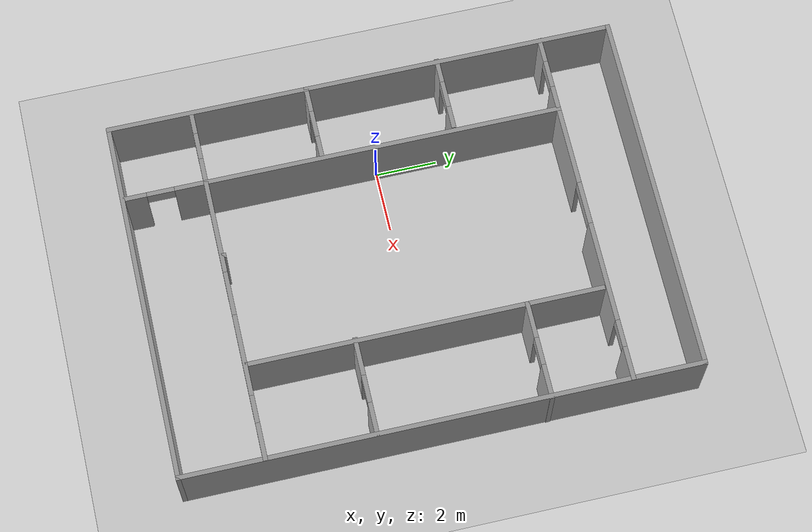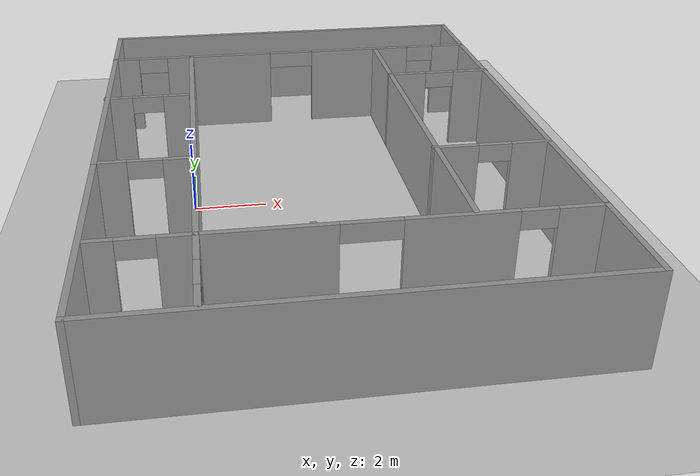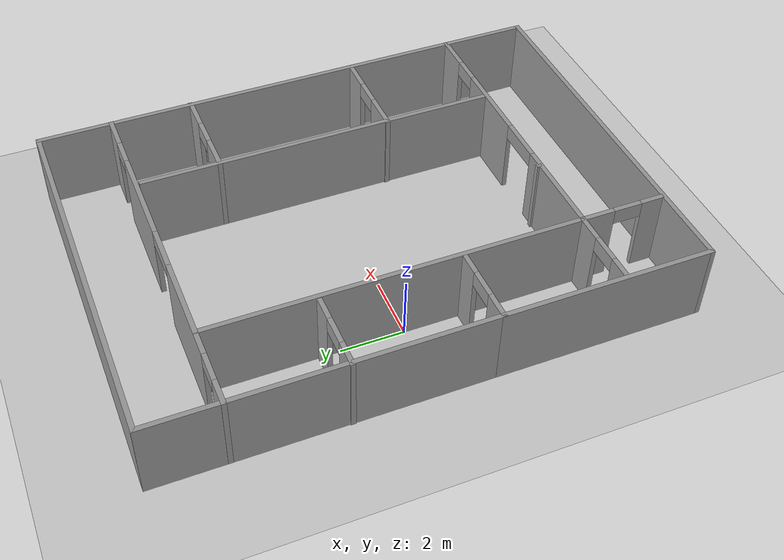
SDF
<sdf version="1.7">
 <world name="default">
  <light name="sun" type="directional">
   <pose>0 0 10 0 -0 0</pose>
   <diffuse>0.8 0.8 0.8 1</diffuse>
   <specular>0.2 0.2 0.2 1</specular>
   <attenuation>
    <range>1000</range>
    <constant>0.9</constant>
    <linear>0.01</linear>
    <quadratic>0.001</quadratic>
   </attenuation>
   <direction>-0.5 0.1 -0.9</direction>
   <spot><inner_angle>0</inner_angle><outer_angle>0</outer_angle><falloff>0</falloff></spot>
  </light>
  <model name="ground_plane">
   <static>1</static>
   <link name="link">
    <collision name="collision">
     <geometry><plane><normal>0 0 1</normal><size>100 100</size></plane></geometry>
     <surface>
      <contact><collide_bitmask>65535</collide_bitmask></contact>
      <friction><ode><mu>100</mu><mu2>50</mu2></ode></friction>
     </surface>
    </collision>
    <visual name="visual">
     <cast_shadows>0</cast_shadows>
     <geometry><plane><normal>0 0 1</normal><size>100 100</size></plane></geometry>
     <material>
      <script><uri>file://media/materials/scripts/gazebo.material</uri><name>Gazebo/Grey</name></script>
     </material>
    </visual>
   </link>
  </model>
  <gravity>0 0 -9.8</gravity>
  <magnetic_field>6e-06 2.3e-05 -4.2e-05</magnetic_field>
  <atmosphere type="adiabatic"/>
  <physics type="ode">
   <max_step_size>0.001</max_step_size>
   <real_time_factor>1</real_time_factor>
   <real_time_update_rate>1000</real_time_update_rate>
  </physics>
  <scene><ambient>0.4 0.4 0.4 1</ambient><background>0.7 0.7 0.7 1</background><shadows>1</shadows></scene>
  <spherical_coordinates>
   <surface_model>EARTH_WGS84</surface_model>
   <latitude_deg>0</latitude_deg>
   <longitude_deg>0</longitude_deg>
   <elevation>0</elevation>
   <heading_deg>0</heading_deg>
  </spherical_coordinates>
  <model name="doors">
   <pose>3.50338 0.028186 0 0 -0 0</pose>
   <link name="Wall_0">
    <collision name="Wall_0_Collision">
     <geometry><box><size>10.25 0.15 2.5</size></box></geometry>
     <pose>0 0 1.25 0 -0 0</pose>
    </collision>
    <visual name="Wall_0_Visual">
     <pose>0 0 1.25 0 -0 0</pose>
     <geometry><box><size>10.25 0.15 2.5</size></box></geometry>
     <material>
      <script><uri>file://media/materials/scripts/gazebo.material</uri><name>Gazebo/Grey</name></script>
      <ambient>1 1 1 1</ambient>
     </material>
     <meta><layer>0</layer></meta>
    </visual>
    <pose>-5.92087 3.25 0 0 -0 1.5708</pose>
   </link>
   <link name="Wall_1">
    <collision name="Wall_1_Collision">
     <geometry><box><size>12 0.15 2.5</size></box></geometry>
     <pose>0 0 1.25 0 -0 0</pose>
    </collision>
    <visual name="Wall_1_Visual">
     <pose>0 0 1.25 0 -0 0</pose>
     <geometry><box><size>12 0.15 2.5</size></box></geometry>
     <material>
      <script><uri>file://media/materials/scripts/gazebo.material</uri><name>Gazebo/Grey</name></script>
      <ambient>1 1 1 1</ambient>
     </material>
     <meta><layer>0</layer></meta>
    </visual>
    <pose>0.004132 8.3 0 0 -0 0</pose>
   </link>
   <link name="Wall_13">
    <pose>-4.74587 -1.8 0 0 -0 0</pose>
    <visual name="Wall_13_Visual_0">
     <pose>-0.807832 0 1.25 0 -0 0</pose>
     <geometry><box><size>0.884337 0.15 2.5</size></box></geometry>
     <material>
      <script><uri>file://media/materials/scripts/gazebo.material</uri><name>Gazebo/Grey</name></script>
      <ambient>1 1 1 1</ambient>
     </material>
     <meta><layer>0</layer></meta>
    </visual>
    <collision name="Wall_13_Collision_0">
     <geometry><box><size>0.884337 0.15 2.5</size></box></geometry>
     <pose>-0.807832 0 1.25 0 -0 0</pose>
    </collision>
    <visual name="Wall_13_Visual_1">
     <pose>0.892168 0 1.25 0 -0 0</pose>
     <geometry><box><size>0.715663 0.15 2.5</size></box></geometry>
     <material>
      <script><uri>file://media/materials/scripts/gazebo.material</uri><name>Gazebo/Grey</name></script>
      <ambient>1 1 1 1</ambient>
     </material>
     <meta><layer>0</layer></meta>
    </visual>
    <collision name="Wall_13_Collision_1">
     <geometry><box><size>0.715663 0.15 2.5</size></box></geometry>
     <pose>0.892168 0 1.25 0 -0 0</pose>
    </collision>
    <visual name="Wall_13_Visual_2">
     <pose>0.084337 0 2.25 0 -0 0</pose>
     <geometry><box><size>0.9 0.15 0.5</size></box></geometry>
     <material>
      <script><uri>file://media/materials/scripts/gazebo.material</uri><name>Gazebo/Grey</name></script>
      <ambient>1 1 1 1</ambient>
     </material>
     <meta><layer>0</layer></meta>
    </visual>
    <collision name="Wall_13_Collision_2">
     <geometry><box><size>0.9 0.15 0.5</size></box></geometry>
     <pose>0.084337 0 2.25 0 -0 0</pose>
    </collision>
   </link>
   <link name="Wall_15">
    <pose>-4.77371 2.55775 0 0 -0 0</pose>
    <visual name="Wall_15_Visual_0">
     <pose>-0.833912 0 1.25 0 -0 0</pose>
     <geometry><box><size>0.832176 0.15 2.5</size></box></geometry>
     <material>
      <script><uri>file://media/materials/scripts/gazebo.material</uri><name>Gazebo/Grey</name></script>
      <ambient>1 1 1 1</ambient>
     </material>
     <meta><layer>0</layer></meta>
    </visual>
    <collision name="Wall_15_Collision_0">
     <geometry><box><size>0.832176 0.15 2.5</size></box></geometry>
     <pose>-0.833912 0 1.25 0 -0 0</pose>
    </collision>
    <visual name="Wall_15_Visual_1">
     <pose>0.866088 0 1.25 0 -0 0</pose>
     <geometry><box><size>0.767824 0.15 2.5</size></box></geometry>
     <material>
      <script><uri>file://media/materials/scripts/gazebo.material</uri><name>Gazebo/Grey</name></script>
      <ambient>1 1 1 1</ambient>
     </material>
     <meta><layer>0</layer></meta>
    </visual>
    <collision name="Wall_15_Collision_1">
     <geometry><box><size>0.767824 0.15 2.5</size></box></geometry>
     <pose>0.866088 0 1.25 0 -0 0</pose>
    </collision>
    <visual name="Wall_15_Visual_2">
     <pose>0.032176 0 2.25 0 -0 0</pose>
     <geometry><box><size>0.9 0.15 0.5</size></box></geometry>
     <material>
      <script><uri>file://media/materials/scripts/gazebo.material</uri><name>Gazebo/Grey</name></script>
      <ambient>1 1 1 1</ambient>
     </material>
     <meta><layer>0</layer></meta>
    </visual>
    <collision name="Wall_15_Collision_2">
     <geometry><box><size>0.9 0.15 0.5</size></box></geometry>
     <pose>0.032176 0 2.25 0 -0 0</pose>
    </collision>
   </link>
   <link name="Wall_19">
    <collision name="Wall_19_Collision">
     <geometry><box><size>0.15 0.15 2.5</size></box></geometry>
     <pose>0 0 1.25 0 -0 0</pose>
    </collision>
    <visual name="Wall_19_Visual">
     <pose>0 0 1.25 0 -0 0</pose>
     <geometry><box><size>0.15 0.15 2.5</size></box></geometry>
     <material>
      <script><uri>file://media/materials/scripts/gazebo.material</uri><name>Gazebo/Grey</name></script>
      <ambient>1 1 1 1</ambient>
     </material>
     <meta><layer>0</layer></meta>
    </visual>
    <pose>-0.855458 -5.52676 0 0 -0 0</pose>
   </link>
   <link name="Wall_2">
    <collision name="Wall_2_Collision">
     <geometry><box><size>16.75 0.15 2.5</size></box></geometry>
     <pose>0 0 1.25 0 -0 0</pose>
    </collision>
    <visual name="Wall_2_Visual">
     <pose>0 0 1.25 0 -0 0</pose>
     <geometry><box><size>16.75 0.15 2.5</size></box></geometry>
     <material>
      <script><uri>file://media/materials/scripts/gazebo.material</uri><name>Gazebo/Grey</name></script>
      <ambient>1 1 1 1</ambient>
     </material>
     <meta><layer>0</layer></meta>
    </visual>
    <pose>5.92913 0 0 0 -0 -1.5708</pose>
   </link>
   <link name="Wall_27">
    <pose>1.24564 -5.59572 0 0 -0 0</pose>
    <visual name="Wall_27_Visual_0">
     <pose>-3.1456 0 1.25 0 -0 0</pose>
     <geometry><box><size>3.20879 0.15 2.5</size></box></geometry>
     <material>
      <script><uri>file://media/materials/scripts/gazebo.material</uri><name>Gazebo/Grey</name></script>
      <ambient>1 1 1 1</ambient>
     </material>
     <meta><layer>0</layer></meta>
    </visual>
    <collision name="Wall_27_Collision_0">
     <geometry><box><size>3.20879 0.15 2.5</size></box></geometry>
     <pose>-3.1456 0 1.25 0 -0 0</pose>
    </collision>
    <visual name="Wall_27_Visual_1">
     <pose>1.26664 0 1.25 0 -0 0</pose>
     <geometry><box><size>2.69569 0.15 2.5</size></box></geometry>
     <material>
      <script><uri>file://media/materials/scripts/gazebo.material</uri><name>Gazebo/Grey</name></script>
      <ambient>1 1 1 1</ambient>
     </material>
     <meta><layer>0</layer></meta>
    </visual>
    <collision name="Wall_27_Collision_1">
     <geometry><box><size>2.69569 0.15 2.5</size></box></geometry>
     <pose>1.26664 0 1.25 0 -0 0</pose>
    </collision>
    <visual name="Wall_27_Visual_2">
     <pose>4.13224 0 1.25 0 -0 0</pose>
     <geometry><box><size>1.23552 0.15 2.5</size></box></geometry>
     <material>
      <script><uri>file://media/materials/scripts/gazebo.material</uri><name>Gazebo/Grey</name></script>
      <ambient>1 1 1 1</ambient>
     </material>
     <meta><layer>0</layer></meta>
    </visual>
    <collision name="Wall_27_Collision_2">
     <geometry><box><size>1.23552 0.15 2.5</size></box></geometry>
     <pose>4.13224 0 1.25 0 -0 0</pose>
    </collision>
    <visual name="Wall_27_Visual_3">
     <pose>-0.811206 0 2.25 0 -0 0</pose>
     <geometry><box><size>1.46 0.15 0.5</size></box></geometry>
     <material>
      <script><uri>file://media/materials/scripts/gazebo.material</uri><name>Gazebo/Grey</name></script>
      <ambient>1 1 1 1</ambient>
     </material>
     <meta><layer>0</layer></meta>
    </visual>
    <collision name="Wall_27_Collision_3">
     <geometry><box><size>1.46 0.15 0.5</size></box></geometry>
     <pose>-0.811206 0 2.25 0 -0 0</pose>
    </collision>
    <visual name="Wall_27_Visual_4">
     <pose>3.06448 0 2.25 0 -0 0</pose>
     <geometry><box><size>0.9 0.15 0.5</size></box></geometry>
     <material>
      <script><uri>file://media/materials/scripts/gazebo.material</uri><name>Gazebo/Grey</name></script>
      <ambient>1 1 1 1</ambient>
     </material>
     <meta><layer>0</layer></meta>
    </visual>
    <collision name="Wall_27_Collision_4">
     <geometry><box><size>0.9 0.15 0.5</size></box></geometry>
     <pose>3.06448 0 2.25 0 -0 0</pose>
    </collision>
   </link>
   <link name="Wall_29">
    <pose>-3.42936 -6.89572 0 0 -0 -1.5708</pose>
    <visual name="Wall_29_Visual_0">
     <pose>-0.825495 0 1.25 0 -0 0</pose>
     <geometry><box><size>1.09901 0.15 2.5</size></box></geometry>
     <material>
      <script><uri>file://media/materials/scripts/gazebo.material</uri><name>Gazebo/Grey</name></script>
      <ambient>1 1 1 1</ambient>
     </material>
     <meta><layer>0</layer></meta>
    </visual>
    <collision name="Wall_29_Collision_0">
     <geometry><box><size>1.09901 0.15 2.5</size></box></geometry>
     <pose>-0.825495 0 1.25 0 -0 0</pose>
    </collision>
    <visual name="Wall_29_Visual_1">
     <pose>0.999505 0 1.25 0 -0 0</pose>
     <geometry><box><size>0.75099 0.15 2.5</size></box></geometry>
     <material>
      <script><uri>file://media/materials/scripts/gazebo.material</uri><name>Gazebo/Grey</name></script>
      <ambient>1 1 1 1</ambient>
     </material>
     <meta><layer>0</layer></meta>
    </visual>
    <collision name="Wall_29_Collision_1">
     <geometry><box><size>0.75099 0.15 2.5</size></box></geometry>
     <pose>0.999505 0 1.25 0 -0 0</pose>
    </collision>
    <visual name="Wall_29_Visual_2">
     <pose>0.17401 0 2.25 0 -0 0</pose>
     <geometry><box><size>0.9 0.15 0.5</size></box></geometry>
     <material>
      <script><uri>file://media/materials/scripts/gazebo.material</uri><name>Gazebo/Grey</name></script>
      <ambient>1 1 1 1</ambient>
     </material>
     <meta><layer>0</layer></meta>
    </visual>
    <collision name="Wall_29_Collision_2">
     <geometry><box><size>0.9 0.15 0.5</size></box></geometry>
     <pose>0.17401 0 2.25 0 -0 0</pose>
    </collision>
   </link>
   <link name="Wall_3">
    <collision name="Wall_3_Collision">
     <geometry><box><size>12 0.15 2.5</size></box></geometry>
     <pose>0 0 1.25 0 -0 0</pose>
    </collision>
    <visual name="Wall_3_Visual">
     <pose>0 0 1.25 0 -0 0</pose>
     <geometry><box><size>12 0.15 2.5</size></box></geometry>
     <material>
      <script><uri>file://media/materials/scripts/gazebo.material</uri><name>Gazebo/Grey</name></script>
      <ambient>1 1 1 1</ambient>
     </material>
     <meta><layer>0</layer></meta>
    </visual>
    <pose>0.004132 -8.3 0 0 -0 3.14159</pose>
   </link>
   <link name="Wall_31">
    <collision name="Wall_31_Collision">
     <geometry><box><size>11.5 0.15 2.5</size></box></geometry>
     <pose>0 0 1.25 0 -0 0</pose>
    </collision>
    <visual name="Wall_31_Visual">
     <pose>0 0 1.25 0 -0 0</pose>
     <geometry><box><size>11.5 0.15 2.5</size></box></geometry>
     <material>
      <script><uri>file://media/materials/scripts/gazebo.material</uri><name>Gazebo/Grey</name></script>
      <ambient>1 1 1 1</ambient>
     </material>
     <meta><layer>0</layer></meta>
    </visual>
    <pose>2.84871 0.155637 0 0 -0 -1.5708</pose>
   </link>
   <link name="Wall_33">
    <pose>4.35825 -2.09866 0 0 -0 0</pose>
    <visual name="Wall_33_Visual_0">
     <pose>-0.997392 0 1.25 0 -0 0</pose>
     <geometry><box><size>1.25522 0.15 2.5</size></box></geometry>
     <material>
      <script><uri>file://media/materials/scripts/gazebo.material</uri><name>Gazebo/Grey</name></script>
      <ambient>1 1 1 1</ambient>
     </material>
     <meta><layer>0</layer></meta>
    </visual>
    <collision name="Wall_33_Collision_0">
     <geometry><box><size>1.25522 0.15 2.5</size></box></geometry>
     <pose>-0.997392 0 1.25 0 -0 0</pose>
    </collision>
    <visual name="Wall_33_Visual_1">
     <pose>1.07761 0 1.25 0 -0 0</pose>
     <geometry><box><size>1.09478 0.15 2.5</size></box></geometry>
     <material>
      <script><uri>file://media/materials/scripts/gazebo.material</uri><name>Gazebo/Grey</name></script>
      <ambient>1 1 1 1</ambient>
     </material>
     <meta><layer>0</layer></meta>
    </visual>
    <collision name="Wall_33_Collision_1">
     <geometry><box><size>1.09478 0.15 2.5</size></box></geometry>
     <pose>1.07761 0 1.25 0 -0 0</pose>
    </collision>
    <visual name="Wall_33_Visual_2">
     <pose>0.080217 0 2.25 0 -0 0</pose>
     <geometry><box><size>0.9 0.15 0.5</size></box></geometry>
     <material>
      <script><uri>file://media/materials/scripts/gazebo.material</uri><name>Gazebo/Grey</name></script>
      <ambient>1 1 1 1</ambient>
     </material>
     <meta><layer>0</layer></meta>
    </visual>
    <collision name="Wall_33_Collision_2">
     <geometry><box><size>0.9 0.15 0.5</size></box></geometry>
     <pose>0.080217 0 2.25 0 -0 0</pose>
    </collision>
   </link>
   <link name="Wall_35">
    <pose>4.39871 3.4033 0 0 -0 0</pose>
    <visual name="Wall_35_Visual_0">
     <pose>-1.01762 0 1.25 0 -0 0</pose>
     <geometry><box><size>1.21476 0.15 2.5</size></box></geometry>
     <material>
      <script><uri>file://media/materials/scripts/gazebo.material</uri><name>Gazebo/Grey</name></script>
      <ambient>1 1 1 1</ambient>
     </material>
     <meta><layer>0</layer></meta>
    </visual>
    <collision name="Wall_35_Collision_0">
     <geometry><box><size>1.21476 0.15 2.5</size></box></geometry>
     <pose>-1.01762 0 1.25 0 -0 0</pose>
    </collision>
    <visual name="Wall_35_Visual_1">
     <pose>1.05738 0 1.25 0 -0 0</pose>
     <geometry><box><size>1.13524 0.15 2.5</size></box></geometry>
     <material>
      <script><uri>file://media/materials/scripts/gazebo.material</uri><name>Gazebo/Grey</name></script>
      <ambient>1 1 1 1</ambient>
     </material>
     <meta><layer>0</layer></meta>
    </visual>
    <collision name="Wall_35_Collision_1">
     <geometry><box><size>1.13524 0.15 2.5</size></box></geometry>
     <pose>1.05738 0 1.25 0 -0 0</pose>
    </collision>
    <visual name="Wall_35_Visual_2">
     <pose>0.039762 0 2.25 0 -0 0</pose>
     <geometry><box><size>0.9 0.15 0.5</size></box></geometry>
     <material>
      <script><uri>file://media/materials/scripts/gazebo.material</uri><name>Gazebo/Grey</name></script>
      <ambient>1 1 1 1</ambient>
     </material>
     <meta><layer>0</layer></meta>
    </visual>
    <collision name="Wall_35_Collision_2">
     <geometry><box><size>0.9 0.15 0.5</size></box></geometry>
     <pose>0.039762 0 2.25 0 -0 0</pose>
    </collision>
   </link>
   <link name="Wall_4">
    <collision name="Wall_4_Collision">
     <geometry><box><size>6.65 0.15 2.5</size></box></geometry>
     <pose>0 0 1.25 0 -0 0</pose>
    </collision>
    <visual name="Wall_4_Visual">
     <pose>0 0 1.25 0 -0 0</pose>
     <geometry><box><size>6.65 0.15 2.5</size></box></geometry>
     <material>
      <script><uri>file://media/materials/scripts/gazebo.material</uri><name>Gazebo/Grey</name></script>
      <ambient>1 1 1 1</ambient>
     </material>
     <meta><layer>0</layer></meta>
    </visual>
    <pose>-5.92087 -5.05 0 0 -0 1.5708</pose>
   </link>
   <link name="Wall_6">
    <pose>-0.002054 6.00428 0 0 -0 0</pose>
    <visual name="Wall_6_Visual_0">
     <pose>-5.57736 0 1.25 0 -0 0</pose>
     <geometry><box><size>0.845275 0.15 2.5</size></box></geometry>
     <material>
      <script><uri>file://media/materials/scripts/gazebo.material</uri><name>Gazebo/Grey</name></script>
      <ambient>1 1 1 1</ambient>
     </material>
     <meta><layer>0</layer></meta>
    </visual>
    <collision name="Wall_6_Collision_0">
     <geometry><box><size>0.845275 0.15 2.5</size></box></geometry>
     <pose>-5.57736 0 1.25 0 -0 0</pose>
    </collision>
    <visual name="Wall_6_Visual_1">
     <pose>-2.5015 0 1.25 0 -0 0</pose>
     <geometry><box><size>3.45385 0.15 2.5</size></box></geometry>
     <material>
      <script><uri>file://media/materials/scripts/gazebo.material</uri><name>Gazebo/Grey</name></script>
      <ambient>1 1 1 1</ambient>
     </material>
     <meta><layer>0</layer></meta>
    </visual>
    <collision name="Wall_6_Collision_1">
     <geometry><box><size>3.45385 0.15 2.5</size></box></geometry>
     <pose>-2.5015 0 1.25 0 -0 0</pose>
    </collision>
    <visual name="Wall_6_Visual_2">
     <pose>2.32247 0 1.25 0 -0 0</pose>
     <geometry><box><size>3.3361 0.15 2.5</size></box></geometry>
     <material>
      <script><uri>file://media/materials/scripts/gazebo.material</uri><name>Gazebo/Grey</name></script>
      <ambient>1 1 1 1</ambient>
     </material>
     <meta><layer>0</layer></meta>
    </visual>
    <collision name="Wall_6_Collision_2">
     <geometry><box><size>3.3361 0.15 2.5</size></box></geometry>
     <pose>2.32247 0 1.25 0 -0 0</pose>
    </collision>
    <visual name="Wall_6_Visual_3">
     <pose>5.44526 0 1.25 0 -0 0</pose>
     <geometry><box><size>1.10948 0.15 2.5</size></box></geometry>
     <material>
      <script><uri>file://media/materials/scripts/gazebo.material</uri><name>Gazebo/Grey</name></script>
      <ambient>1 1 1 1</ambient>
     </material>
     <meta><layer>0</layer></meta>
    </visual>
    <collision name="Wall_6_Collision_3">
     <geometry><box><size>1.10948 0.15 2.5</size></box></geometry>
     <pose>5.44526 0 1.25 0 -0 0</pose>
    </collision>
    <visual name="Wall_6_Visual_4">
     <pose>-4.69158 0 2.25 0 -0 0</pose>
     <geometry><box><size>0.926301 0.15 0.5</size></box></geometry>
     <material>
      <script><uri>file://media/materials/scripts/gazebo.material</uri><name>Gazebo/Grey</name></script>
      <ambient>1 1 1 1</ambient>
     </material>
     <meta><layer>0</layer></meta>
    </visual>
    <collision name="Wall_6_Collision_4">
     <geometry><box><size>0.926301 0.15 0.5</size></box></geometry>
     <pose>-4.69158 0 2.25 0 -0 0</pose>
    </collision>
    <visual name="Wall_6_Visual_5">
     <pose>-0.060079 0 2.25 0 -0 0</pose>
     <geometry><box><size>1.429 0.15 0.5</size></box></geometry>
     <material>
      <script><uri>file://media/materials/scripts/gazebo.material</uri><name>Gazebo/Grey</name></script>
      <ambient>1 1 1 1</ambient>
     </material>
     <meta><layer>0</layer></meta>
    </visual>
    <collision name="Wall_6_Collision_5">
     <geometry><box><size>1.429 0.15 0.5</size></box></geometry>
     <pose>-0.060079 0 2.25 0 -0 0</pose>
    </collision>
    <visual name="Wall_6_Visual_6">
     <pose>4.44052 0 2.25 0 -0 0</pose>
     <geometry><box><size>0.9 0.15 0.5</size></box></geometry>
     <material>
      <script><uri>file://media/materials/scripts/gazebo.material</uri><name>Gazebo/Grey</name></script>
      <ambient>1 1 1 1</ambient>
     </material>
     <meta><layer>0</layer></meta>
    </visual>
    <collision name="Wall_6_Collision_6">
     <geometry><box><size>0.9 0.15 0.5</size></box></geometry>
     <pose>4.44052 0 2.25 0 -0 0</pose>
    </collision>
   </link>
   <link name="Wall_8">
    <collision name="Wall_8_Collision">
     <geometry><box><size>11.75 0.15 2.5</size></box></geometry>
     <pose>0 0 1.25 0 -0 0</pose>
    </collision>
    <visual name="Wall_8_Visual">
     <pose>0 0 1.25 0 -0 0</pose>
     <geometry><box><size>11.75 0.15 2.5</size></box></geometry>
     <material>
      <script><uri>file://media/materials/scripts/gazebo.material</uri><name>Gazebo/Grey</name></script>
      <ambient>1 1 1 1</ambient>
     </material>
     <meta><layer>0</layer></meta>
    </visual>
    <pose>-3.42936 0.204279 0 0 -0 -1.5708</pose>
   </link>
   <link name="Wall_9">
    <pose>-4.60436 -5.59572 0 0 -0 3.14159</pose>
    <visual name="Wall_9_Visual_0">
     <pose>-0.791415 0 1.25 0 -0 0</pose>
     <geometry><box><size>0.917169 0.15 2.5</size></box></geometry>
     <material>
      <script><uri>file://media/materials/scripts/gazebo.material</uri><name>Gazebo/Grey</name></script>
      <ambient>1 1 1 1</ambient>
     </material>
     <meta><layer>0</layer></meta>
    </visual>
    <collision name="Wall_9_Collision_0">
     <geometry><box><size>0.917169 0.15 2.5</size></box></geometry>
     <pose>-0.791415 0 1.25 0 -0 0</pose>
    </collision>
    <visual name="Wall_9_Visual_1">
     <pose>0.908585 0 1.25 0 -0 0</pose>
     <geometry><box><size>0.682831 0.15 2.5</size></box></geometry>
     <material>
      <script><uri>file://media/materials/scripts/gazebo.material</uri><name>Gazebo/Grey</name></script>
      <ambient>1 1 1 1</ambient>
     </material>
     <meta><layer>0</layer></meta>
    </visual>
    <collision name="Wall_9_Collision_1">
     <geometry><box><size>0.682831 0.15 2.5</size></box></geometry>
     <pose>0.908585 0 1.25 0 -0 0</pose>
    </collision>
    <visual name="Wall_9_Visual_2">
     <pose>0.117169 0 2.25 0 -0 0</pose>
     <geometry><box><size>0.9 0.15 0.5</size></box></geometry>
     <material>
      <script><uri>file://media/materials/scripts/gazebo.material</uri><name>Gazebo/Grey</name></script>
      <ambient>1 1 1 1</ambient>
     </material>
     <meta><layer>0</layer></meta>
    </visual>
    <collision name="Wall_9_Collision_2">
     <geometry><box><size>0.9 0.15 0.5</size></box></geometry>
     <pose>0.117169 0 2.25 0 -0 0</pose>
    </collision>
   </link>
   <static>1</static>
  </model>
 </world>
</sdf>
